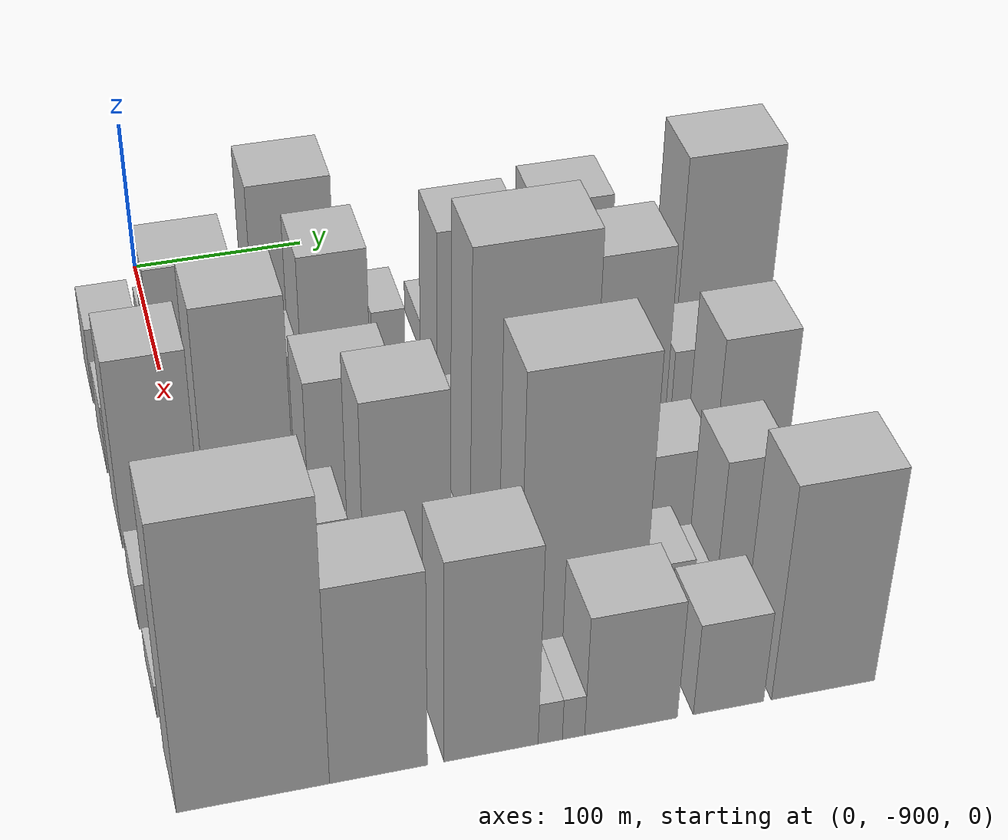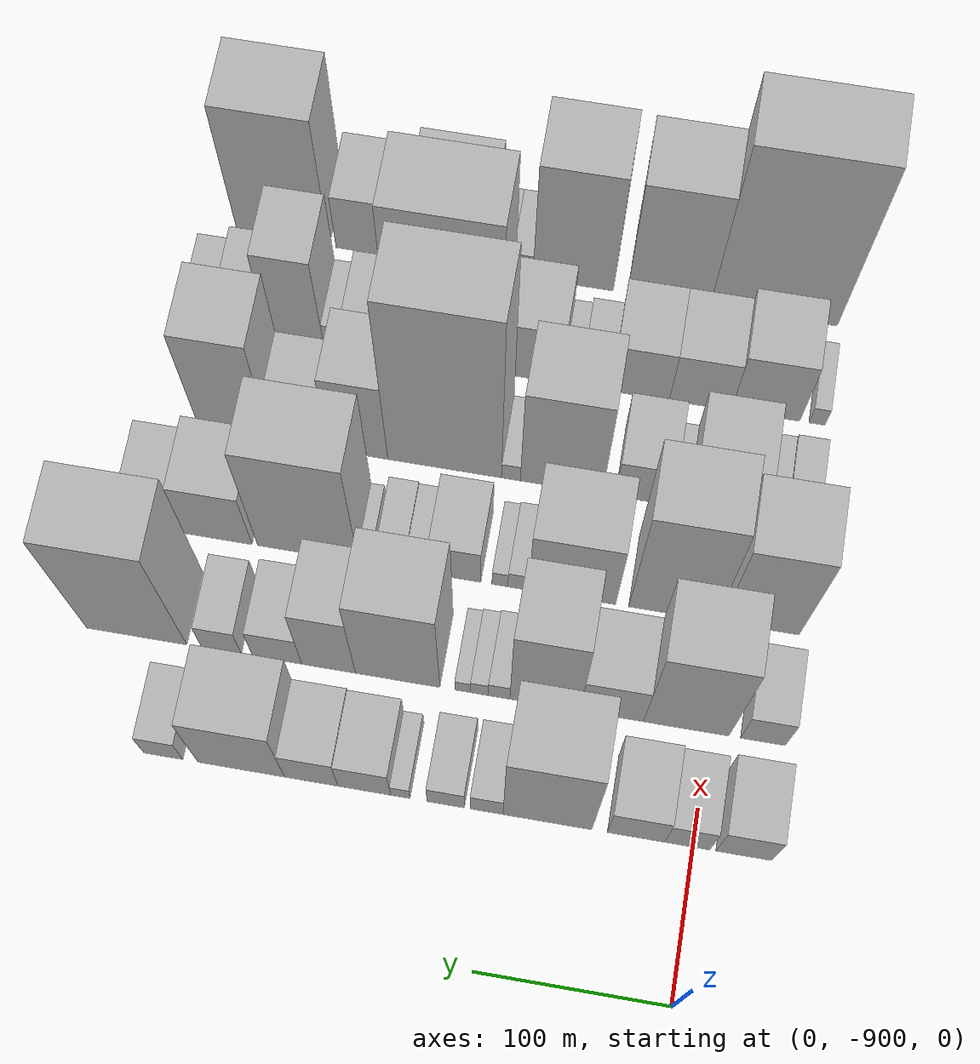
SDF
<sdf version="1.6">
 <world name="default">
  <model name="building_1">
   <static>1</static>
   <pose>100.0000 -925.7938 0 0.000000 0.000000 0.000000</pose>
   <link name="link">
    <pose>0 0 25.50 0 0 0</pose>
    <collision name="collision"><geometry><box><size>40.0000 28.4124 51.0000</size></box></geometry></collision>
    <visual name="visual">
     <cast_shadows>0</cast_shadows>
     <geometry><box><size>40.0000 28.4124 51.0000</size></box></geometry>
     <material>
      <script>
       <uri>model://HANNAS_wall/materials/scripts</uri>
       <uri>model://HANNAS_wall/materials/textures</uri>
       <name>vrc/HANNAS_wall</name>
      </script>
     </material>
    </visual>
   </link>
  </model>
  <model name="building_2">
   <static>1</static>
   <pose>100.0000 -896.9620 0 0.000000 0.000000 0.000000</pose>
   <link name="link">
    <pose>0 0 22.50 0 0 0</pose>
    <collision name="collision"><geometry><box><size>40.0000 23.2511 45.0000</size></box></geometry></collision>
    <visual name="visual">
     <cast_shadows>0</cast_shadows>
     <geometry><box><size>40.0000 23.2511 45.0000</size></box></geometry>
     <material>
      <script>
       <uri>model://HANNAS_wall/materials/scripts</uri>
       <uri>model://HANNAS_wall/materials/textures</uri>
       <name>vrc/HANNAS_wall</name>
      </script>
     </material>
    </visual>
   </link>
  </model>
  <model name="building_3">
   <static>1</static>
   <pose>100.0000 -870.5901 0 0.000000 0.000000 0.000000</pose>
   <link name="link">
    <pose>0 0 25.50 0 0 0</pose>
    <collision name="collision"><geometry><box><size>40.0000 29.4928 51.0000</size></box></geometry></collision>
    <visual name="visual">
     <cast_shadows>0</cast_shadows>
     <geometry><box><size>40.0000 29.4928 51.0000</size></box></geometry>
     <material>
      <script>
       <uri>model://HANNAS_wall/materials/scripts</uri>
       <uri>model://HANNAS_wall/materials/textures</uri>
       <name>vrc/HANNAS_wall</name>
      </script>
     </material>
    </visual>
   </link>
  </model>
  <model name="building_4">
   <static>1</static>
   <pose>100.0000 -824.8516 0 0.000000 0.000000 0.000000</pose>
   <link name="link">
    <pose>0 0 64.50 0 0 0</pose>
    <collision name="collision"><geometry><box><size>40.0000 45.9840 129.0000</size></box></geometry></collision>
    <visual name="visual">
     <cast_shadows>0</cast_shadows>
     <geometry><box><size>40.0000 45.9840 129.0000</size></box></geometry>
     <material>
      <script>
       <uri>model://HANNAS_wall/materials/scripts</uri>
       <uri>model://HANNAS_wall/materials/textures</uri>
       <name>vrc/HANNAS_wall</name>
      </script>
     </material>
    </visual>
   </link>
  </model>
  <model name="building_5">
   <static>1</static>
   <pose>100.0000 -793.3695 0 0.000000 0.000000 0.000000</pose>
   <link name="link">
    <pose>0 0 16.50 0 0 0</pose>
    <collision name="collision"><geometry><box><size>40.0000 16.9802 33.0000</size></box></geometry></collision>
    <visual name="visual">
     <cast_shadows>0</cast_shadows>
     <geometry><box><size>40.0000 16.9802 33.0000</size></box></geometry>
     <material>
      <script>
       <uri>model://HANNAS_wall/materials/scripts</uri>
       <uri>model://HANNAS_wall/materials/textures</uri>
       <name>vrc/HANNAS_wall</name>
      </script>
     </material>
    </visual>
   </link>
  </model>
  <model name="building_6">
   <static>1</static>
   <pose>100.0000 -772.2433 0 0.000000 0.000000 0.000000</pose>
   <link name="link">
    <pose>0 0 16.50 0 0 0</pose>
    <collision name="collision"><geometry><box><size>40.0000 19.2723 33.0000</size></box></geometry></collision>
    <visual name="visual">
     <cast_shadows>0</cast_shadows>
     <geometry><box><size>40.0000 19.2723 33.0000</size></box></geometry>
     <material>
      <script>
       <uri>model://HANNAS_wall/materials/scripts</uri>
       <uri>model://HANNAS_wall/materials/textures</uri>
       <name>vrc/HANNAS_wall</name>
      </script>
     </material>
    </visual>
   </link>
  </model>
  <model name="building_7">
   <static>1</static>
   <pose>100.0000 -748.5811 0 0.000000 0.000000 0.000000</pose>
   <link name="link">
    <pose>0 0 10.50 0 0 0</pose>
    <collision name="collision"><geometry><box><size>40.0000 10.0522 21.0000</size></box></geometry></collision>
    <visual name="visual">
     <cast_shadows>0</cast_shadows>
     <geometry><box><size>40.0000 10.0522 21.0000</size></box></geometry>
     <material>
      <script>
       <uri>model://HANNAS_wall/materials/scripts</uri>
       <uri>model://HANNAS_wall/materials/textures</uri>
       <name>vrc/HANNAS_wall</name>
      </script>
     </material>
    </visual>
   </link>
  </model>
  <model name="building_8">
   <static>1</static>
   <pose>100.0000 -729.7922 0 0.000000 0.000000 0.000000</pose>
   <link name="link">
    <pose>0 0 24.00 0 0 0</pose>
    <collision name="collision"><geometry><box><size>40.0000 27.5256 48.0000</size></box></geometry></collision>
    <visual name="visual">
     <cast_shadows>0</cast_shadows>
     <geometry><box><size>40.0000 27.5256 48.0000</size></box></geometry>
     <material>
      <script>
       <uri>model://HANNAS_wall/materials/scripts</uri>
       <uri>model://HANNAS_wall/materials/textures</uri>
       <name>vrc/HANNAS_wall</name>
      </script>
     </material>
    </visual>
   </link>
  </model>
  <model name="building_9">
   <static>1</static>
   <pose>100.0000 -702.0516 0 0.000000 0.000000 0.000000</pose>
   <link name="link">
    <pose>0 0 25.50 0 0 0</pose>
    <collision name="collision"><geometry><box><size>40.0000 27.9556 51.0000</size></box></geometry></collision>
    <visual name="visual">
     <cast_shadows>0</cast_shadows>
     <geometry><box><size>40.0000 27.9556 51.0000</size></box></geometry>
     <material>
      <script>
       <uri>model://HANNAS_wall/materials/scripts</uri>
       <uri>model://HANNAS_wall/materials/textures</uri>
       <name>vrc/HANNAS_wall</name>
      </script>
     </material>
    </visual>
   </link>
  </model>
  <model name="building_10">
   <static>1</static>
   <pose>100.0000 -665.2863 0 0.000000 0.000000 0.000000</pose>
   <link name="link">
    <pose>0 0 45.00 0 0 0</pose>
    <collision name="collision"><geometry><box><size>40.0000 45.5750 90.0000</size></box></geometry></collision>
    <visual name="visual">
     <cast_shadows>0</cast_shadows>
     <geometry><box><size>40.0000 45.5750 90.0000</size></box></geometry>
     <material>
      <script>
       <uri>model://HANNAS_wall/materials/scripts</uri>
       <uri>model://HANNAS_wall/materials/textures</uri>
       <name>vrc/HANNAS_wall</name>
      </script>
     </material>
    </visual>
   </link>
  </model>
  <model name="building_11">
   <static>1</static>
   <pose>100.0000 -624.2099 0 0.000000 0.000000 0.000000</pose>
   <link name="link">
    <pose>0 0 18.00 0 0 0</pose>
    <collision name="collision"><geometry><box><size>40.0000 20.5779 36.0000</size></box></geometry></collision>
    <visual name="visual">
     <cast_shadows>0</cast_shadows>
     <geometry><box><size>40.0000 20.5779 36.0000</size></box></geometry>
     <material>
      <script>
       <uri>model://HANNAS_wall/materials/scripts</uri>
       <uri>model://HANNAS_wall/materials/textures</uri>
       <name>vrc/HANNAS_wall</name>
      </script>
     </material>
    </visual>
   </link>
  </model>
  <model name="building_55">
   <static>1</static>
   <pose>160.0000 -928.2729 0 0.000000 0.000000 0.000000</pose>
   <link name="link">
    <pose>0 0 22.50 0 0 0</pose>
    <collision name="collision"><geometry><box><size>40.0000 23.4542 45.0000</size></box></geometry></collision>
    <visual name="visual">
     <cast_shadows>0</cast_shadows>
     <geometry><box><size>40.0000 23.4542 45.0000</size></box></geometry>
     <material>
      <script>
       <uri>model://HANNAS_wall/materials/scripts</uri>
       <uri>model://HANNAS_wall/materials/textures</uri>
       <name>vrc/HANNAS_wall</name>
      </script>
     </material>
    </visual>
   </link>
  </model>
  <model name="building_56">
   <static>1</static>
   <pose>160.0000 -888.1282 0 0.000000 0.000000 0.000000</pose>
   <link name="link">
    <pose>0 0 64.50 0 0 0</pose>
    <collision name="collision"><geometry><box><size>40.0000 44.8353 129.0000</size></box></geometry></collision>
    <visual name="visual">
     <cast_shadows>0</cast_shadows>
     <geometry><box><size>40.0000 44.8353 129.0000</size></box></geometry>
     <material>
      <script>
       <uri>model://HANNAS_wall/materials/scripts</uri>
       <uri>model://HANNAS_wall/materials/textures</uri>
       <name>vrc/HANNAS_wall</name>
      </script>
     </material>
    </visual>
   </link>
  </model>
  <model name="building_57">
   <static>1</static>
   <pose>160.0000 -849.1035 0 0.000000 0.000000 0.000000</pose>
   <link name="link">
    <pose>0 0 30.00 0 0 0</pose>
    <collision name="collision"><geometry><box><size>40.0000 33.2142 60.0000</size></box></geometry></collision>
    <visual name="visual">
     <cast_shadows>0</cast_shadows>
     <geometry><box><size>40.0000 33.2142 60.0000</size></box></geometry>
     <material>
      <script>
       <uri>model://HANNAS_wall/materials/scripts</uri>
       <uri>model://HANNAS_wall/materials/textures</uri>
       <name>vrc/HANNAS_wall</name>
      </script>
     </material>
    </visual>
   </link>
  </model>
  <model name="building_58">
   <static>1</static>
   <pose>160.0000 -813.9708 0 0.000000 0.000000 0.000000</pose>
   <link name="link">
    <pose>0 0 61.50 0 0 0</pose>
    <collision name="collision"><geometry><box><size>40.0000 37.0511 123.0000</size></box></geometry></collision>
    <visual name="visual">
     <cast_shadows>0</cast_shadows>
     <geometry><box><size>40.0000 37.0511 123.0000</size></box></geometry>
     <material>
      <script>
       <uri>model://HANNAS_wall/materials/scripts</uri>
       <uri>model://HANNAS_wall/materials/textures</uri>
       <name>vrc/HANNAS_wall</name>
      </script>
     </material>
    </visual>
   </link>
  </model>
  <model name="building_59">
   <static>1</static>
   <pose>160.0000 -789.7222 0 0.000000 0.000000 0.000000</pose>
   <link name="link">
    <pose>0 0 12.00 0 0 0</pose>
    <collision name="collision"><geometry><box><size>40.0000 11.4462 24.0000</size></box></geometry></collision>
    <visual name="visual">
     <cast_shadows>0</cast_shadows>
     <geometry><box><size>40.0000 11.4462 24.0000</size></box></geometry>
     <material>
      <script>
       <uri>model://HANNAS_wall/materials/scripts</uri>
       <uri>model://HANNAS_wall/materials/textures</uri>
       <name>vrc/HANNAS_wall</name>
      </script>
     </material>
    </visual>
   </link>
  </model>
  <model name="building_60">
   <static>1</static>
   <pose>160.0000 -779.3121 0 0.000000 0.000000 0.000000</pose>
   <link name="link">
    <pose>0 0 10.50 0 0 0</pose>
    <collision name="collision"><geometry><box><size>40.0000 9.3740 21.0000</size></box></geometry></collision>
    <visual name="visual">
     <cast_shadows>0</cast_shadows>
     <geometry><box><size>40.0000 9.3740 21.0000</size></box></geometry>
     <material>
      <script>
       <uri>model://HANNAS_wall/materials/scripts</uri>
       <uri>model://HANNAS_wall/materials/textures</uri>
       <name>vrc/HANNAS_wall</name>
      </script>
     </material>
    </visual>
   </link>
  </model>
  <model name="building_61">
   <static>1</static>
   <pose>160.0000 -770.5227 0 0.000000 0.000000 0.000000</pose>
   <link name="link">
    <pose>0 0 9.00 0 0 0</pose>
    <collision name="collision"><geometry><box><size>40.0000 8.2050 18.0000</size></box></geometry></collision>
    <visual name="visual">
     <cast_shadows>0</cast_shadows>
     <geometry><box><size>40.0000 8.2050 18.0000</size></box></geometry>
     <material>
      <script>
       <uri>model://HANNAS_wall/materials/scripts</uri>
       <uri>model://HANNAS_wall/materials/textures</uri>
       <name>vrc/HANNAS_wall</name>
      </script>
     </material>
    </visual>
   </link>
  </model>
  <model name="building_62">
   <static>1</static>
   <pose>160.0000 -736.0024 0 0.000000 0.000000 0.000000</pose>
   <link name="link">
    <pose>0 0 63.00 0 0 0</pose>
    <collision name="collision"><geometry><box><size>40.0000 44.8356 126.0000</size></box></geometry></collision>
    <visual name="visual">
     <cast_shadows>0</cast_shadows>
     <geometry><box><size>40.0000 44.8356 126.0000</size></box></geometry>
     <material>
      <script>
       <uri>model://HANNAS_wall/materials/scripts</uri>
       <uri>model://HANNAS_wall/materials/textures</uri>
       <name>vrc/HANNAS_wall</name>
      </script>
     </material>
    </visual>
   </link>
  </model>
  <model name="building_63">
   <static>1</static>
   <pose>160.0000 -699.2651 0 0.000000 0.000000 0.000000</pose>
   <link name="link">
    <pose>0 0 46.50 0 0 0</pose>
    <collision name="collision"><geometry><box><size>40.0000 28.6390 93.0000</size></box></geometry></collision>
    <visual name="visual">
     <cast_shadows>0</cast_shadows>
     <geometry><box><size>40.0000 28.6390 93.0000</size></box></geometry>
     <material>
      <script>
       <uri>model://HANNAS_wall/materials/scripts</uri>
       <uri>model://HANNAS_wall/materials/textures</uri>
       <name>vrc/HANNAS_wall</name>
      </script>
     </material>
    </visual>
   </link>
  </model>
  <model name="building_64">
   <static>1</static>
   <pose>160.0000 -671.7702 0 0.000000 0.000000 0.000000</pose>
   <link name="link">
    <pose>0 0 22.50 0 0 0</pose>
    <collision name="collision"><geometry><box><size>40.0000 26.3509 45.0000</size></box></geometry></collision>
    <visual name="visual">
     <cast_shadows>0</cast_shadows>
     <geometry><box><size>40.0000 26.3509 45.0000</size></box></geometry>
     <material>
      <script>
       <uri>model://HANNAS_wall/materials/scripts</uri>
       <uri>model://HANNAS_wall/materials/textures</uri>
       <name>vrc/HANNAS_wall</name>
      </script>
     </material>
    </visual>
   </link>
  </model>
  <model name="building_65">
   <static>1</static>
   <pose>160.0000 -641.9309 0 0.000000 0.000000 0.000000</pose>
   <link name="link">
    <pose>0 0 19.50 0 0 0</pose>
    <collision name="collision"><geometry><box><size>40.0000 21.3277 39.0000</size></box></geometry></collision>
    <visual name="visual">
     <cast_shadows>0</cast_shadows>
     <geometry><box><size>40.0000 21.3277 39.0000</size></box></geometry>
     <material>
      <script>
       <uri>model://HANNAS_wall/materials/scripts</uri>
       <uri>model://HANNAS_wall/materials/textures</uri>
       <name>vrc/HANNAS_wall</name>
      </script>
     </material>
    </visual>
   </link>
  </model>
  <model name="building_66">
   <static>1</static>
   <pose>160.0000 -596.3192 0 0.000000 0.000000 0.000000</pose>
   <link name="link">
    <pose>0 0 75.00 0 0 0</pose>
    <collision name="collision"><geometry><box><size>40.0000 53.8957 150.0000</size></box></geometry></collision>
    <visual name="visual">
     <cast_shadows>0</cast_shadows>
     <geometry><box><size>40.0000 53.8957 150.0000</size></box></geometry>
     <material>
      <script>
       <uri>model://HANNAS_wall/materials/scripts</uri>
       <uri>model://HANNAS_wall/materials/textures</uri>
       <name>vrc/HANNAS_wall</name>
      </script>
     </material>
    </visual>
   </link>
  </model>
  <model name="building_112">
   <static>1</static>
   <pose>220.0000 -919.4122 0 0.000000 0.000000 0.000000</pose>
   <link name="link">
    <pose>0 0 61.50 0 0 0</pose>
    <collision name="collision"><geometry><box><size>40.0000 41.1756 123.0000</size></box></geometry></collision>
    <visual name="visual">
     <cast_shadows>0</cast_shadows>
     <geometry><box><size>40.0000 41.1756 123.0000</size></box></geometry>
     <material>
      <script>
       <uri>model://HANNAS_wall/materials/scripts</uri>
       <uri>model://HANNAS_wall/materials/textures</uri>
       <name>vrc/HANNAS_wall</name>
      </script>
     </material>
    </visual>
   </link>
  </model>
  <model name="building_113">
   <static>1</static>
   <pose>220.0000 -872.5207 0 0.000000 0.000000 0.000000</pose>
   <link name="link">
    <pose>0 0 73.50 0 0 0</pose>
    <collision name="collision"><geometry><box><size>40.0000 46.6074 147.0000</size></box></geometry></collision>
    <visual name="visual">
     <cast_shadows>0</cast_shadows>
     <geometry><box><size>40.0000 46.6074 147.0000</size></box></geometry>
     <material>
      <script>
       <uri>model://HANNAS_wall/materials/scripts</uri>
       <uri>model://HANNAS_wall/materials/textures</uri>
       <name>vrc/HANNAS_wall</name>
      </script>
     </material>
    </visual>
   </link>
  </model>
  <model name="building_114">
   <static>1</static>
   <pose>220.0000 -818.8293 0 0.000000 0.000000 0.000000</pose>
   <link name="link">
    <pose>0 0 45.00 0 0 0</pose>
    <collision name="collision"><geometry><box><size>40.0000 46.7754 90.0000</size></box></geometry></collision>
    <visual name="visual">
     <cast_shadows>0</cast_shadows>
     <geometry><box><size>40.0000 46.7754 90.0000</size></box></geometry>
     <material>
      <script>
       <uri>model://HANNAS_wall/materials/scripts</uri>
       <uri>model://HANNAS_wall/materials/textures</uri>
       <name>vrc/HANNAS_wall</name>
      </script>
     </material>
    </visual>
   </link>
  </model>
  <model name="building_115">
   <static>1</static>
   <pose>220.0000 -789.9014 0 0.000000 0.000000 0.000000</pose>
   <link name="link">
    <pose>0 0 12.00 0 0 0</pose>
    <collision name="collision"><geometry><box><size>40.0000 11.0805 24.0000</size></box></geometry></collision>
    <visual name="visual">
     <cast_shadows>0</cast_shadows>
     <geometry><box><size>40.0000 11.0805 24.0000</size></box></geometry>
     <material>
      <script>
       <uri>model://HANNAS_wall/materials/scripts</uri>
       <uri>model://HANNAS_wall/materials/textures</uri>
       <name>vrc/HANNAS_wall</name>
      </script>
     </material>
    </visual>
   </link>
  </model>
  <model name="building_116">
   <static>1</static>
   <pose>220.0000 -780.0830 0 0.000000 0.000000 0.000000</pose>
   <link name="link">
    <pose>0 0 10.50 0 0 0</pose>
    <collision name="collision"><geometry><box><size>40.0000 8.5563 21.0000</size></box></geometry></collision>
    <visual name="visual">
     <cast_shadows>0</cast_shadows>
     <geometry><box><size>40.0000 8.5563 21.0000</size></box></geometry>
     <material>
      <script>
       <uri>model://HANNAS_wall/materials/scripts</uri>
       <uri>model://HANNAS_wall/materials/textures</uri>
       <name>vrc/HANNAS_wall</name>
      </script>
     </material>
    </visual>
   </link>
  </model>
  <model name="building_117">
   <static>1</static>
   <pose>220.0000 -755.9077 0 0.000000 0.000000 0.000000</pose>
   <link name="link">
    <pose>0 0 24.00 0 0 0</pose>
    <collision name="collision"><geometry><box><size>40.0000 27.7943 48.0000</size></box></geometry></collision>
    <visual name="visual">
     <cast_shadows>0</cast_shadows>
     <geometry><box><size>40.0000 27.7943 48.0000</size></box></geometry>
     <material>
      <script>
       <uri>model://HANNAS_wall/materials/scripts</uri>
       <uri>model://HANNAS_wall/materials/textures</uri>
       <name>vrc/HANNAS_wall</name>
      </script>
     </material>
    </visual>
   </link>
  </model>
  <model name="building_118">
   <static>1</static>
   <pose>220.0000 -736.0011 0 0.000000 0.000000 0.000000</pose>
   <link name="link">
    <pose>0 0 13.50 0 0 0</pose>
    <collision name="collision"><geometry><box><size>40.0000 12.0189 27.0000</size></box></geometry></collision>
    <visual name="visual">
     <cast_shadows>0</cast_shadows>
     <geometry><box><size>40.0000 12.0189 27.0000</size></box></geometry>
     <material>
      <script>
       <uri>model://HANNAS_wall/materials/scripts</uri>
       <uri>model://HANNAS_wall/materials/textures</uri>
       <name>vrc/HANNAS_wall</name>
      </script>
     </material>
    </visual>
   </link>
  </model>
  <model name="building_119">
   <static>1</static>
   <pose>220.0000 -721.9748 0 0.000000 0.000000 0.000000</pose>
   <link name="link">
    <pose>0 0 15.00 0 0 0</pose>
    <collision name="collision"><geometry><box><size>40.0000 16.0337 30.0000</size></box></geometry></collision>
    <visual name="visual">
     <cast_shadows>0</cast_shadows>
     <geometry><box><size>40.0000 16.0337 30.0000</size></box></geometry>
     <material>
      <script>
       <uri>model://HANNAS_wall/materials/scripts</uri>
       <uri>model://HANNAS_wall/materials/textures</uri>
       <name>vrc/HANNAS_wall</name>
      </script>
     </material>
    </visual>
   </link>
  </model>
  <model name="building_120">
   <static>1</static>
   <pose>220.0000 -707.2462 0 0.000000 0.000000 0.000000</pose>
   <link name="link">
    <pose>0 0 7.50 0 0 0</pose>
    <collision name="collision"><geometry><box><size>40.0000 7.4235 15.0000</size></box></geometry></collision>
    <visual name="visual">
     <cast_shadows>0</cast_shadows>
     <geometry><box><size>40.0000 7.4235 15.0000</size></box></geometry>
     <material>
      <script>
       <uri>model://HANNAS_wall/materials/scripts</uri>
       <uri>model://HANNAS_wall/materials/textures</uri>
       <name>vrc/HANNAS_wall</name>
      </script>
     </material>
    </visual>
   </link>
  </model>
  <model name="building_121">
   <static>1</static>
   <pose>220.0000 -676.1380 0 0.000000 0.000000 0.000000</pose>
   <link name="link">
    <pose>0 0 70.50 0 0 0</pose>
    <collision name="collision"><geometry><box><size>40.0000 54.7927 141.0000</size></box></geometry></collision>
    <visual name="visual">
     <cast_shadows>0</cast_shadows>
     <geometry><box><size>40.0000 54.7927 141.0000</size></box></geometry>
     <material>
      <script>
       <uri>model://HANNAS_wall/materials/scripts</uri>
       <uri>model://HANNAS_wall/materials/textures</uri>
       <name>vrc/HANNAS_wall</name>
      </script>
     </material>
    </visual>
   </link>
  </model>
  <model name="building_122">
   <static>1</static>
   <pose>220.0000 -626.9643 0 0.000000 0.000000 0.000000</pose>
   <link name="link">
    <pose>0 0 36.00 0 0 0</pose>
    <collision name="collision"><geometry><box><size>40.0000 37.5549 72.0000</size></box></geometry></collision>
    <visual name="visual">
     <cast_shadows>0</cast_shadows>
     <geometry><box><size>40.0000 37.5549 72.0000</size></box></geometry>
     <material>
      <script>
       <uri>model://HANNAS_wall/materials/scripts</uri>
       <uri>model://HANNAS_wall/materials/textures</uri>
       <name>vrc/HANNAS_wall</name>
      </script>
     </material>
    </visual>
   </link>
  </model>
  <model name="building_123">
   <static>1</static>
   <pose>220.0000 -594.2498 0 0.000000 0.000000 0.000000</pose>
   <link name="link">
    <pose>0 0 27.00 0 0 0</pose>
    <collision name="collision"><geometry><box><size>40.0000 27.8740 54.0000</size></box></geometry></collision>
    <visual name="visual">
     <cast_shadows>0</cast_shadows>
     <geometry><box><size>40.0000 27.8740 54.0000</size></box></geometry>
     <material>
      <script>
       <uri>model://HANNAS_wall/materials/scripts</uri>
       <uri>model://HANNAS_wall/materials/textures</uri>
       <name>vrc/HANNAS_wall</name>
      </script>
     </material>
    </visual>
   </link>
  </model>
  <model name="building_167">
   <static>1</static>
   <pose>280.0000 -931.6601 0 0.000000 0.000000 0.000000</pose>
   <link name="link">
    <pose>0 0 15.00 0 0 0</pose>
    <collision name="collision"><geometry><box><size>40.0000 16.6798 30.0000</size></box></geometry></collision>
    <visual name="visual">
     <cast_shadows>0</cast_shadows>
     <geometry><box><size>40.0000 16.6798 30.0000</size></box></geometry>
     <material>
      <script>
       <uri>model://HANNAS_wall/materials/scripts</uri>
       <uri>model://HANNAS_wall/materials/textures</uri>
       <name>vrc/HANNAS_wall</name>
      </script>
     </material>
    </visual>
   </link>
  </model>
  <model name="building_168">
   <static>1</static>
   <pose>280.0000 -916.9227 0 0.000000 0.000000 0.000000</pose>
   <link name="link">
    <pose>0 0 13.50 0 0 0</pose>
    <collision name="collision"><geometry><box><size>40.0000 12.7950 27.0000</size></box></geometry></collision>
    <visual name="visual">
     <cast_shadows>0</cast_shadows>
     <geometry><box><size>40.0000 12.7950 27.0000</size></box></geometry>
     <material>
      <script>
       <uri>model://HANNAS_wall/materials/scripts</uri>
       <uri>model://HANNAS_wall/materials/textures</uri>
       <name>vrc/HANNAS_wall</name>
      </script>
     </material>
    </visual>
   </link>
  </model>
  <model name="building_169">
   <static>1</static>
   <pose>280.0000 -890.9150 0 0.000000 0.000000 0.000000</pose>
   <link name="link">
    <pose>0 0 34.50 0 0 0</pose>
    <collision name="collision"><geometry><box><size>40.0000 39.2203 69.0000</size></box></geometry></collision>
    <visual name="visual">
     <cast_shadows>0</cast_shadows>
     <geometry><box><size>40.0000 39.2203 69.0000</size></box></geometry>
     <material>
      <script>
       <uri>model://HANNAS_wall/materials/scripts</uri>
       <uri>model://HANNAS_wall/materials/textures</uri>
       <name>vrc/HANNAS_wall</name>
      </script>
     </material>
    </visual>
   </link>
  </model>
  <model name="building_170">
   <static>1</static>
   <pose>280.0000 -866.9476 0 0.000000 0.000000 0.000000</pose>
   <link name="link">
    <pose>0 0 10.50 0 0 0</pose>
    <collision name="collision"><geometry><box><size>40.0000 8.7145 21.0000</size></box></geometry></collision>
    <visual name="visual">
     <cast_shadows>0</cast_shadows>
     <geometry><box><size>40.0000 8.7145 21.0000</size></box></geometry>
     <material>
      <script>
       <uri>model://HANNAS_wall/materials/scripts</uri>
       <uri>model://HANNAS_wall/materials/textures</uri>
       <name>vrc/HANNAS_wall</name>
      </script>
     </material>
    </visual>
   </link>
  </model>
  <model name="building_171">
   <static>1</static>
   <pose>280.0000 -847.8032 0 0.000000 0.000000 0.000000</pose>
   <link name="link">
    <pose>0 0 25.50 0 0 0</pose>
    <collision name="collision"><geometry><box><size>40.0000 29.5744 51.0000</size></box></geometry></collision>
    <visual name="visual">
     <cast_shadows>0</cast_shadows>
     <geometry><box><size>40.0000 29.5744 51.0000</size></box></geometry>
     <material>
      <script>
       <uri>model://HANNAS_wall/materials/scripts</uri>
       <uri>model://HANNAS_wall/materials/textures</uri>
       <name>vrc/HANNAS_wall</name>
      </script>
     </material>
    </visual>
   </link>
  </model>
  <model name="building_172">
   <static>1</static>
   <pose>280.0000 -803.5791 0 0.000000 0.000000 0.000000</pose>
   <link name="link">
    <pose>0 0 61.50 0 0 0</pose>
    <collision name="collision"><geometry><box><size>40.0000 44.8738 123.0000</size></box></geometry></collision>
    <visual name="visual">
     <cast_shadows>0</cast_shadows>
     <geometry><box><size>40.0000 44.8738 123.0000</size></box></geometry>
     <material>
      <script>
       <uri>model://HANNAS_wall/materials/scripts</uri>
       <uri>model://HANNAS_wall/materials/textures</uri>
       <name>vrc/HANNAS_wall</name>
      </script>
     </material>
    </visual>
   </link>
  </model>
  <model name="building_173">
   <static>1</static>
   <pose>280.0000 -775.9733 0 0.000000 0.000000 0.000000</pose>
   <link name="link">
    <pose>0 0 10.50 0 0 0</pose>
    <collision name="collision"><geometry><box><size>40.0000 10.3377 21.0000</size></box></geometry></collision>
    <visual name="visual">
     <cast_shadows>0</cast_shadows>
     <geometry><box><size>40.0000 10.3377 21.0000</size></box></geometry>
     <material>
      <script>
       <uri>model://HANNAS_wall/materials/scripts</uri>
       <uri>model://HANNAS_wall/materials/textures</uri>
       <name>vrc/HANNAS_wall</name>
      </script>
     </material>
    </visual>
   </link>
  </model>
  <model name="building_174">
   <static>1</static>
   <pose>280.0000 -739.5596 0 0.000000 0.000000 0.000000</pose>
   <link name="link">
    <pose>0 0 102.00 0 0 0</pose>
    <collision name="collision"><geometry><box><size>40.0000 62.4897 204.0000</size></box></geometry></collision>
    <visual name="visual">
     <cast_shadows>0</cast_shadows>
     <geometry><box><size>40.0000 62.4897 204.0000</size></box></geometry>
     <material>
      <script>
       <uri>model://HANNAS_wall/materials/scripts</uri>
       <uri>model://HANNAS_wall/materials/textures</uri>
       <name>vrc/HANNAS_wall</name>
      </script>
     </material>
    </visual>
   </link>
  </model>
  <model name="building_175">
   <static>1</static>
   <pose>280.0000 -692.1430 0 0.000000 0.000000 0.000000</pose>
   <link name="link">
    <pose>0 0 49.50 0 0 0</pose>
    <collision name="collision"><geometry><box><size>40.0000 32.3434 99.0000</size></box></geometry></collision>
    <visual name="visual">
     <cast_shadows>0</cast_shadows>
     <geometry><box><size>40.0000 32.3434 99.0000</size></box></geometry>
     <material>
      <script>
       <uri>model://HANNAS_wall/materials/scripts</uri>
       <uri>model://HANNAS_wall/materials/textures</uri>
       <name>vrc/HANNAS_wall</name>
      </script>
     </material>
    </visual>
   </link>
  </model>
  <model name="building_176">
   <static>1</static>
   <pose>280.0000 -659.5871 0 0.000000 0.000000 0.000000</pose>
   <link name="link">
    <pose>0 0 28.50 0 0 0</pose>
    <collision name="collision"><geometry><box><size>40.0000 32.7684 57.0000</size></box></geometry></collision>
    <visual name="visual">
     <cast_shadows>0</cast_shadows>
     <geometry><box><size>40.0000 32.7684 57.0000</size></box></geometry>
     <material>
      <script>
       <uri>model://HANNAS_wall/materials/scripts</uri>
       <uri>model://HANNAS_wall/materials/textures</uri>
       <name>vrc/HANNAS_wall</name>
      </script>
     </material>
    </visual>
   </link>
  </model>
  <model name="building_177">
   <static>1</static>
   <pose>280.0000 -623.5133 0 0.000000 0.000000 0.000000</pose>
   <link name="link">
    <pose>0 0 63.00 0 0 0</pose>
    <collision name="collision"><geometry><box><size>40.0000 39.3793 126.0000</size></box></geometry></collision>
    <visual name="visual">
     <cast_shadows>0</cast_shadows>
     <geometry><box><size>40.0000 39.3793 126.0000</size></box></geometry>
     <material>
      <script>
       <uri>model://HANNAS_wall/materials/scripts</uri>
       <uri>model://HANNAS_wall/materials/textures</uri>
       <name>vrc/HANNAS_wall</name>
      </script>
     </material>
    </visual>
   </link>
  </model>
  <model name="building_225">
   <static>1</static>
   <pose>340.0000 -935.5721 0 0.000000 0.000000 0.000000</pose>
   <link name="link">
    <pose>0 0 10.50 0 0 0</pose>
    <collision name="collision"><geometry><box><size>40.0000 8.8559 21.0000</size></box></geometry></collision>
    <visual name="visual">
     <cast_shadows>0</cast_shadows>
     <geometry><box><size>40.0000 8.8559 21.0000</size></box></geometry>
     <material>
      <script>
       <uri>model://HANNAS_wall/materials/scripts</uri>
       <uri>model://HANNAS_wall/materials/textures</uri>
       <name>vrc/HANNAS_wall</name>
      </script>
     </material>
    </visual>
   </link>
  </model>
  <model name="building_226">
   <static>1</static>
   <pose>340.0000 -907.1968 0 0.000000 0.000000 0.000000</pose>
   <link name="link">
    <pose>0 0 36.00 0 0 0</pose>
    <collision name="collision"><geometry><box><size>40.0000 37.8946 72.0000</size></box></geometry></collision>
    <visual name="visual">
     <cast_shadows>0</cast_shadows>
     <geometry><box><size>40.0000 37.8946 72.0000</size></box></geometry>
     <material>
      <script>
       <uri>model://HANNAS_wall/materials/scripts</uri>
       <uri>model://HANNAS_wall/materials/textures</uri>
       <name>vrc/HANNAS_wall</name>
      </script>
     </material>
    </visual>
   </link>
  </model>
  <model name="building_227">
   <static>1</static>
   <pose>340.0000 -871.1327 0 0.000000 0.000000 0.000000</pose>
   <link name="link">
    <pose>0 0 30.00 0 0 0</pose>
    <collision name="collision"><geometry><box><size>40.0000 34.2338 60.0000</size></box></geometry></collision>
    <visual name="visual">
     <cast_shadows>0</cast_shadows>
     <geometry><box><size>40.0000 34.2338 60.0000</size></box></geometry>
     <material>
      <script>
       <uri>model://HANNAS_wall/materials/scripts</uri>
       <uri>model://HANNAS_wall/materials/textures</uri>
       <name>vrc/HANNAS_wall</name>
      </script>
     </material>
    </visual>
   </link>
  </model>
  <model name="building_228">
   <static>1</static>
   <pose>340.0000 -837.7982 0 0.000000 0.000000 0.000000</pose>
   <link name="link">
    <pose>0 0 30.00 0 0 0</pose>
    <collision name="collision"><geometry><box><size>40.0000 32.4352 60.0000</size></box></geometry></collision>
    <visual name="visual">
     <cast_shadows>0</cast_shadows>
     <geometry><box><size>40.0000 32.4352 60.0000</size></box></geometry>
     <material>
      <script>
       <uri>model://HANNAS_wall/materials/scripts</uri>
       <uri>model://HANNAS_wall/materials/textures</uri>
       <name>vrc/HANNAS_wall</name>
      </script>
     </material>
    </visual>
   </link>
  </model>
  <model name="building_229">
   <static>1</static>
   <pose>340.0000 -813.0862 0 0.000000 0.000000 0.000000</pose>
   <link name="link">
    <pose>0 0 15.00 0 0 0</pose>
    <collision name="collision"><geometry><box><size>40.0000 16.9889 30.0000</size></box></geometry></collision>
    <visual name="visual">
     <cast_shadows>0</cast_shadows>
     <geometry><box><size>40.0000 16.9889 30.0000</size></box></geometry>
     <material>
      <script>
       <uri>model://HANNAS_wall/materials/scripts</uri>
       <uri>model://HANNAS_wall/materials/textures</uri>
       <name>vrc/HANNAS_wall</name>
      </script>
     </material>
    </visual>
   </link>
  </model>
  <model name="building_230">
   <static>1</static>
   <pose>340.0000 -799.5418 0 0.000000 0.000000 0.000000</pose>
   <link name="link">
    <pose>0 0 12.00 0 0 0</pose>
    <collision name="collision"><geometry><box><size>40.0000 10.0999 24.0000</size></box></geometry></collision>
    <visual name="visual">
     <cast_shadows>0</cast_shadows>
     <geometry><box><size>40.0000 10.0999 24.0000</size></box></geometry>
     <material>
      <script>
       <uri>model://HANNAS_wall/materials/scripts</uri>
       <uri>model://HANNAS_wall/materials/textures</uri>
       <name>vrc/HANNAS_wall</name>
      </script>
     </material>
    </visual>
   </link>
  </model>
  <model name="building_231">
   <static>1</static>
   <pose>340.0000 -777.8164 0 0.000000 0.000000 0.000000</pose>
   <link name="link">
    <pose>0 0 33.00 0 0 0</pose>
    <collision name="collision"><geometry><box><size>40.0000 33.3508 66.0000</size></box></geometry></collision>
    <visual name="visual">
     <cast_shadows>0</cast_shadows>
     <geometry><box><size>40.0000 33.3508 66.0000</size></box></geometry>
     <material>
      <script>
       <uri>model://HANNAS_wall/materials/scripts</uri>
       <uri>model://HANNAS_wall/materials/textures</uri>
       <name>vrc/HANNAS_wall</name>
      </script>
     </material>
    </visual>
   </link>
  </model>
  <model name="building_232">
   <static>1</static>
   <pose>340.0000 -729.4599 0 0.000000 0.000000 0.000000</pose>
   <link name="link">
    <pose>0 0 88.50 0 0 0</pose>
    <collision name="collision"><geometry><box><size>40.0000 63.3622 177.0000</size></box></geometry></collision>
    <visual name="visual">
     <cast_shadows>0</cast_shadows>
     <geometry><box><size>40.0000 63.3622 177.0000</size></box></geometry>
     <material>
      <script>
       <uri>model://HANNAS_wall/materials/scripts</uri>
       <uri>model://HANNAS_wall/materials/textures</uri>
       <name>vrc/HANNAS_wall</name>
      </script>
     </material>
    </visual>
   </link>
  </model>
  <model name="building_233">
   <static>1</static>
   <pose>340.0000 -685.2543 0 0.000000 0.000000 0.000000</pose>
   <link name="link">
    <pose>0 0 21.00 0 0 0</pose>
    <collision name="collision"><geometry><box><size>40.0000 25.0491 42.0000</size></box></geometry></collision>
    <visual name="visual">
     <cast_shadows>0</cast_shadows>
     <geometry><box><size>40.0000 25.0491 42.0000</size></box></geometry>
     <material>
      <script>
       <uri>model://HANNAS_wall/materials/scripts</uri>
       <uri>model://HANNAS_wall/materials/textures</uri>
       <name>vrc/HANNAS_wall</name>
      </script>
     </material>
    </visual>
   </link>
  </model>
  <model name="building_234">
   <static>1</static>
   <pose>340.0000 -666.8479 0 0.000000 0.000000 0.000000</pose>
   <link name="link">
    <pose>0 0 13.50 0 0 0</pose>
    <collision name="collision"><geometry><box><size>40.0000 11.7638 27.0000</size></box></geometry></collision>
    <visual name="visual">
     <cast_shadows>0</cast_shadows>
     <geometry><box><size>40.0000 11.7638 27.0000</size></box></geometry>
     <material>
      <script>
       <uri>model://HANNAS_wall/materials/scripts</uri>
       <uri>model://HANNAS_wall/materials/textures</uri>
       <name>vrc/HANNAS_wall</name>
      </script>
     </material>
    </visual>
   </link>
  </model>
  <model name="building_235">
   <static>1</static>
   <pose>340.0000 -645.1899 0 0.000000 0.000000 0.000000</pose>
   <link name="link">
    <pose>0 0 51.00 0 0 0</pose>
    <collision name="collision"><geometry><box><size>40.0000 31.5522 102.0000</size></box></geometry></collision>
    <visual name="visual">
     <cast_shadows>0</cast_shadows>
     <geometry><box><size>40.0000 31.5522 102.0000</size></box></geometry>
     <material>
      <script>
       <uri>model://HANNAS_wall/materials/scripts</uri>
       <uri>model://HANNAS_wall/materials/textures</uri>
       <name>vrc/HANNAS_wall</name>
      </script>
     </material>
    </visual>
   </link>
  </model>
  <model name="building_236">
   <static>1</static>
   <pose>340.0000 -617.1419 0 0.000000 0.000000 0.000000</pose>
   <link name="link">
    <pose>0 0 24.00 0 0 0</pose>
    <collision name="collision"><geometry><box><size>40.0000 24.5438 48.0000</size></box></geometry></collision>
    <visual name="visual">
     <cast_shadows>0</cast_shadows>
     <geometry><box><size>40.0000 24.5438 48.0000</size></box></geometry>
     <material>
      <script>
       <uri>model://HANNAS_wall/materials/scripts</uri>
       <uri>model://HANNAS_wall/materials/textures</uri>
       <name>vrc/HANNAS_wall</name>
      </script>
     </material>
    </visual>
   </link>
  </model>
  <model name="building_237">
   <static>1</static>
   <pose>340.0000 -595.0905 0 0.000000 0.000000 0.000000</pose>
   <link name="link">
    <pose>0 0 16.50 0 0 0</pose>
    <collision name="collision"><geometry><box><size>40.0000 19.5590 33.0000</size></box></geometry></collision>
    <visual name="visual">
     <cast_shadows>0</cast_shadows>
     <geometry><box><size>40.0000 19.5590 33.0000</size></box></geometry>
     <material>
      <script>
       <uri>model://HANNAS_wall/materials/scripts</uri>
       <uri>model://HANNAS_wall/materials/textures</uri>
       <name>vrc/HANNAS_wall</name>
      </script>
     </material>
    </visual>
   </link>
  </model>
  <model name="building_285">
   <static>1</static>
   <pose>400.0000 -904.3011 0 0.000000 0.000000 0.000000</pose>
   <link name="link">
    <pose>0 0 90.00 0 0 0</pose>
    <collision name="collision"><geometry><box><size>40.0000 71.3978 180.0000</size></box></geometry></collision>
    <visual name="visual">
     <cast_shadows>0</cast_shadows>
     <geometry><box><size>40.0000 71.3978 180.0000</size></box></geometry>
     <material>
      <script>
       <uri>model://HANNAS_wall/materials/scripts</uri>
       <uri>model://HANNAS_wall/materials/textures</uri>
       <name>vrc/HANNAS_wall</name>
      </script>
     </material>
    </visual>
   </link>
  </model>
  <model name="building_286">
   <static>1</static>
   <pose>400.0000 -845.3439 0 0.000000 0.000000 0.000000</pose>
   <link name="link">
    <pose>0 0 63.00 0 0 0</pose>
    <collision name="collision"><geometry><box><size>40.0000 46.5166 126.0000</size></box></geometry></collision>
    <visual name="visual">
     <cast_shadows>0</cast_shadows>
     <geometry><box><size>40.0000 46.5166 126.0000</size></box></geometry>
     <material>
      <script>
       <uri>model://HANNAS_wall/materials/scripts</uri>
       <uri>model://HANNAS_wall/materials/textures</uri>
       <name>vrc/HANNAS_wall</name>
      </script>
     </material>
    </visual>
   </link>
  </model>
  <model name="building_287">
   <static>1</static>
   <pose>400.0000 -791.2822 0 0.000000 0.000000 0.000000</pose>
   <link name="link">
    <pose>0 0 64.50 0 0 0</pose>
    <collision name="collision"><geometry><box><size>40.0000 45.6068 129.0000</size></box></geometry></collision>
    <visual name="visual">
     <cast_shadows>0</cast_shadows>
     <geometry><box><size>40.0000 45.6068 129.0000</size></box></geometry>
     <material>
      <script>
       <uri>model://HANNAS_wall/materials/scripts</uri>
       <uri>model://HANNAS_wall/materials/textures</uri>
       <name>vrc/HANNAS_wall</name>
      </script>
     </material>
    </visual>
   </link>
  </model>
  <model name="building_288">
   <static>1</static>
   <pose>400.0000 -762.5500 0 0.000000 0.000000 0.000000</pose>
   <link name="link">
    <pose>0 0 13.50 0 0 0</pose>
    <collision name="collision"><geometry><box><size>40.0000 11.8575 27.0000</size></box></geometry></collision>
    <visual name="visual">
     <cast_shadows>0</cast_shadows>
     <geometry><box><size>40.0000 11.8575 27.0000</size></box></geometry>
     <material>
      <script>
       <uri>model://HANNAS_wall/materials/scripts</uri>
       <uri>model://HANNAS_wall/materials/textures</uri>
       <name>vrc/HANNAS_wall</name>
      </script>
     </material>
    </visual>
   </link>
  </model>
  <model name="building_289">
   <static>1</static>
   <pose>400.0000 -751.1277 0 0.000000 0.000000 0.000000</pose>
   <link name="link">
    <pose>0 0 13.50 0 0 0</pose>
    <collision name="collision"><geometry><box><size>40.0000 10.9871 27.0000</size></box></geometry></collision>
    <visual name="visual">
     <cast_shadows>0</cast_shadows>
     <geometry><box><size>40.0000 10.9871 27.0000</size></box></geometry>
     <material>
      <script>
       <uri>model://HANNAS_wall/materials/scripts</uri>
       <uri>model://HANNAS_wall/materials/textures</uri>
       <name>vrc/HANNAS_wall</name>
      </script>
     </material>
    </visual>
   </link>
  </model>
  <model name="building_290">
   <static>1</static>
   <pose>400.0000 -722.6390 0 0.000000 0.000000 0.000000</pose>
   <link name="link">
    <pose>0 0 39.00 0 0 0</pose>
    <collision name="collision"><geometry><box><size>40.0000 45.9904 78.0000</size></box></geometry></collision>
    <visual name="visual">
     <cast_shadows>0</cast_shadows>
     <geometry><box><size>40.0000 45.9904 78.0000</size></box></geometry>
     <material>
      <script>
       <uri>model://HANNAS_wall/materials/scripts</uri>
       <uri>model://HANNAS_wall/materials/textures</uri>
       <name>vrc/HANNAS_wall</name>
      </script>
     </material>
    </visual>
   </link>
  </model>
  <model name="building_291">
   <static>1</static>
   <pose>400.0000 -673.9082 0 0.000000 0.000000 0.000000</pose>
   <link name="link">
    <pose>0 0 30.00 0 0 0</pose>
    <collision name="collision"><geometry><box><size>40.0000 35.4712 60.0000</size></box></geometry></collision>
    <visual name="visual">
     <cast_shadows>0</cast_shadows>
     <geometry><box><size>40.0000 35.4712 60.0000</size></box></geometry>
     <material>
      <script>
       <uri>model://HANNAS_wall/materials/scripts</uri>
       <uri>model://HANNAS_wall/materials/textures</uri>
       <name>vrc/HANNAS_wall</name>
      </script>
     </material>
    </visual>
   </link>
  </model>
  <model name="building_292">
   <static>1</static>
   <pose>400.0000 -625.7684 0 0.000000 0.000000 0.000000</pose>
   <link name="link">
    <pose>0 0 69.00 0 0 0</pose>
    <collision name="collision"><geometry><box><size>40.0000 52.8083 138.0000</size></box></geometry></collision>
    <visual name="visual">
     <cast_shadows>0</cast_shadows>
     <geometry><box><size>40.0000 52.8083 138.0000</size></box></geometry>
     <material>
      <script>
       <uri>model://HANNAS_wall/materials/scripts</uri>
       <uri>model://HANNAS_wall/materials/textures</uri>
       <name>vrc/HANNAS_wall</name>
      </script>
     </material>
    </visual>
   </link>
  </model>
 </world>
</sdf>
